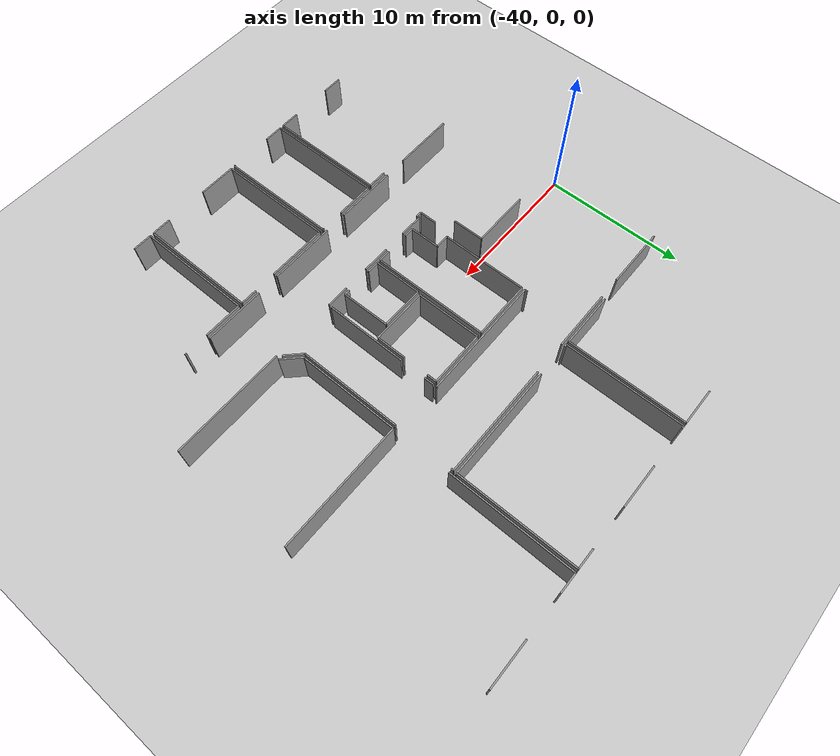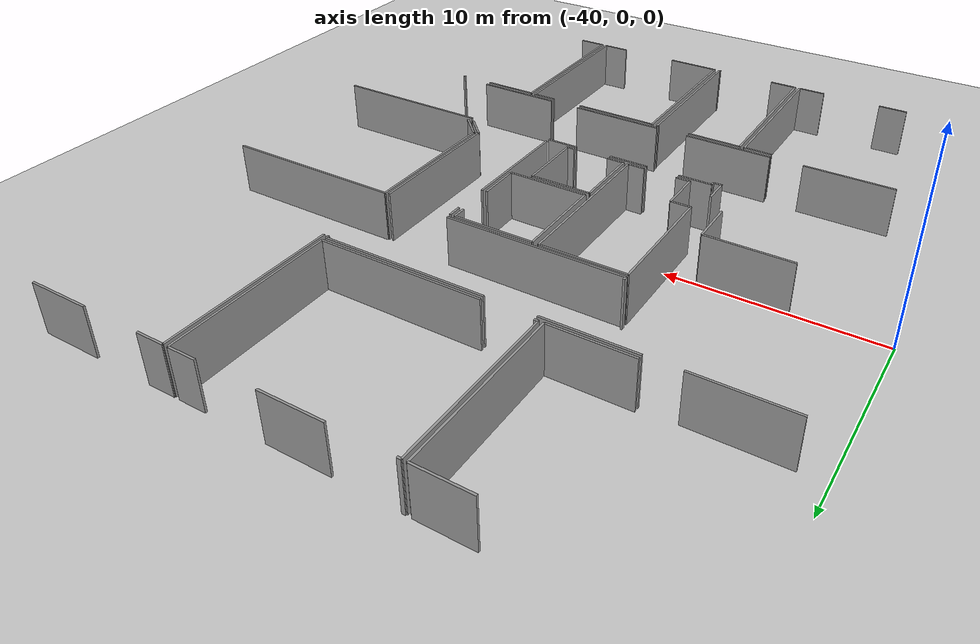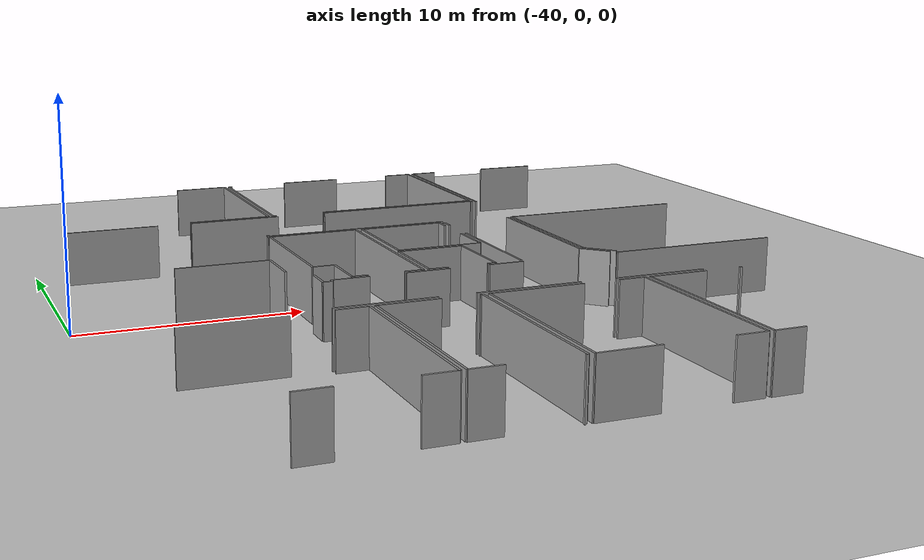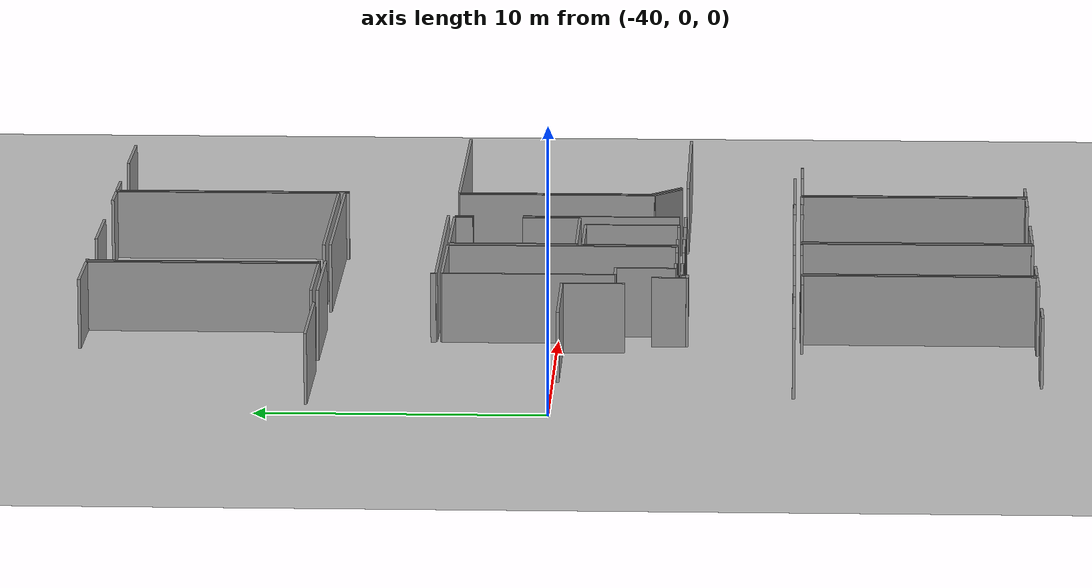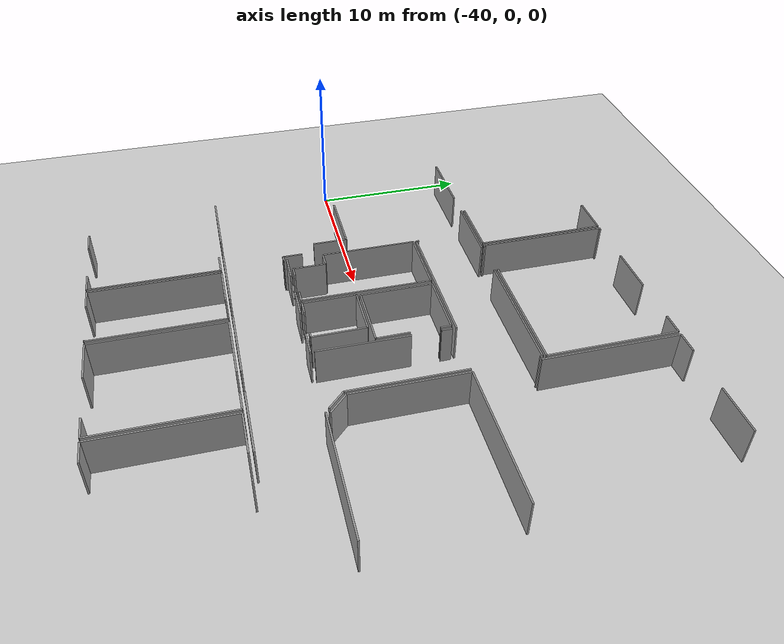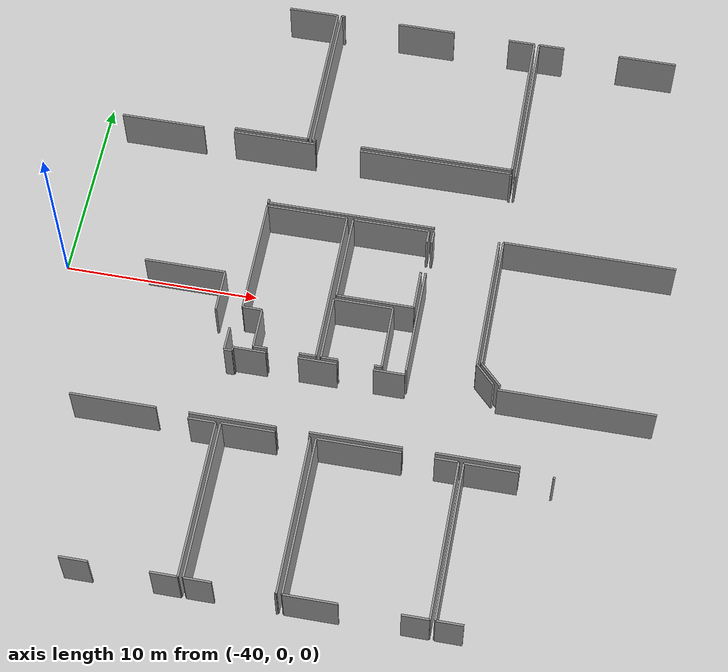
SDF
<sdf version="1.6">
 <world name="default">
  <model name="ground_plane">
   <static>1</static>
   <link name="link">
    <collision name="collision">
     <geometry><plane><normal>0 0 1</normal><size>100 100</size></plane></geometry>
     <surface><friction><ode><mu>100</mu><mu2>50</mu2></ode></friction></surface>
    </collision>
    <visual name="visual">
     <cast_shadows>0</cast_shadows>
     <geometry><plane><normal>0 0 1</normal><size>100 100</size></plane></geometry>
     <material>
      <script><uri>file://media/materials/scripts/gazebo.material</uri><name>Gazebo/Grey</name></script>
     </material>
    </visual>
   </link>
  </model>
  <model name="50041173">
   <static>1</static>
   <link name="Wall_12">
    <collision name="Wall_12_Collision">
     <geometry><box><size>3.90464342837 0.1 2.5</size></box></geometry>
     <pose>1.95232171418 0 1.25 0 0 0</pose>
    </collision>
    <visual name="Wall_12_Visual">
     <pose>1.95232171418 0 1.25 0 0 0</pose>
     <geometry><box><size>3.90464342837 0.1 2.5</size></box></geometry>
     <material>
      <script><uri>file://media/materials/scripts/gazebo.material</uri><name>Gazebo/Grey</name></script>
      <ambient>1 1 1 1</ambient>
     </material>
    </visual>
    <pose>36.7211658077 -8.24595699307 0 0 0 3.14159265359</pose>
   </link>
   <link name="Wall_16">
    <collision name="Wall_16_Collision">
     <geometry><box><size>2.60656528472 0.1 2.5</size></box></geometry>
     <pose>1.30328264236 0 1.25 0 0 0</pose>
    </collision>
    <visual name="Wall_16_Visual">
     <pose>1.30328264236 0 1.25 0 0 0</pose>
     <geometry><box><size>2.60656528472 0.1 2.5</size></box></geometry>
     <material>
      <script><uri>file://media/materials/scripts/gazebo.material</uri><name>Gazebo/Grey</name></script>
      <ambient>1 1 1 1</ambient>
     </material>
    </visual>
    <pose>34.1205666557 -0.0199294219198 0 0 0 0.0</pose>
   </link>
   <link name="Wall_17">
    <collision name="Wall_17_Collision">
     <geometry><box><size>8.22602973469 0.1 2.5</size></box></geometry>
     <pose>4.11301486735 0 1.25 0 0 0</pose>
    </collision>
    <visual name="Wall_17_Visual">
     <pose>4.11301486735 0 1.25 0 0 0</pose>
     <geometry><box><size>8.22602973469 0.1 2.5</size></box></geometry>
     <material>
      <script><uri>file://media/materials/scripts/gazebo.material</uri><name>Gazebo/Grey</name></script>
      <ambient>1 1 1 1</ambient>
     </material>
    </visual>
    <pose>36.7271319404 -0.0199294219198 0 0 0 -1.57152160173</pose>
   </link>
   <link name="Wall_18">
    <collision name="Wall_18_Collision">
     <geometry><box><size>7.98801695905 0.1 2.5</size></box></geometry>
     <pose>3.99400847952 0 1.25 0 0 0</pose>
    </collision>
    <visual name="Wall_18_Visual">
     <pose>3.99400847952 0 1.25 0 0 0</pose>
     <geometry><box><size>7.98801695905 0.1 2.5</size></box></geometry>
     <material>
      <script><uri>file://media/materials/scripts/gazebo.material</uri><name>Gazebo/Grey</name></script>
      <ambient>1 1 1 1</ambient>
     </material>
    </visual>
    <pose>47.5401761913 -8.24049861636 0 0 0 3.14159265359</pose>
   </link>
   <link name="Wall_19">
    <collision name="Wall_19_Collision">
     <geometry><box><size>0.179872553251 0.1 2.5</size></box></geometry>
     <pose>0.0899362766255 0 1.25 0 0 0</pose>
    </collision>
    <visual name="Wall_19_Visual">
     <pose>0.0899362766255 0 1.25 0 0 0</pose>
     <geometry><box><size>0.179872553251 0.1 2.5</size></box></geometry>
     <material>
      <script><uri>file://media/materials/scripts/gazebo.material</uri><name>Gazebo/Grey</name></script>
      <ambient>1 1 1 1</ambient>
     </material>
    </visual>
    <pose>37.1438726548 -8.24049861636 0 0 0 3.14159265359</pose>
   </link>
   <link name="Wall_20">
    <collision name="Wall_20_Collision">
     <geometry><box><size>8.21612632969 0.1 2.5</size></box></geometry>
     <pose>4.10806316484 0 1.25 0 0 0</pose>
    </collision>
    <visual name="Wall_20_Visual">
     <pose>4.10806316484 0 1.25 0 0 0</pose>
     <geometry><box><size>8.21612632969 0.1 2.5</size></box></geometry>
     <material>
      <script><uri>file://media/materials/scripts/gazebo.material</uri><name>Gazebo/Grey</name></script>
      <ambient>1 1 1 1</ambient>
     </material>
    </visual>
    <pose>36.9640001016 -8.24049861636 0 0 0 1.57079632679</pose>
   </link>
   <link name="Wall_21">
    <collision name="Wall_21_Collision">
     <geometry><box><size>0.181522760161 0.1 2.5</size></box></geometry>
     <pose>0.0907613800807 0 1.25 0 0 0</pose>
    </collision>
    <visual name="Wall_21_Visual">
     <pose>0.0907613800807 0 1.25 0 0 0</pose>
     <geometry><box><size>0.181522760161 0.1 2.5</size></box></geometry>
     <material>
      <script><uri>file://media/materials/scripts/gazebo.material</uri><name>Gazebo/Grey</name></script>
      <ambient>1 1 1 1</ambient>
     </material>
    </visual>
    <pose>36.9640001016 -0.024372286679 0 0 0 0.0</pose>
   </link>
   <link name="Wall_22">
    <collision name="Wall_22_Collision">
     <geometry><box><size>3.04869379776 0.1 2.5</size></box></geometry>
     <pose>1.52434689888 0 1.25 0 0 0</pose>
    </collision>
    <visual name="Wall_22_Visual">
     <pose>1.52434689888 0 1.25 0 0 0</pose>
     <geometry><box><size>3.04869379776 0.1 2.5</size></box></geometry>
     <material>
      <script><uri>file://media/materials/scripts/gazebo.material</uri><name>Gazebo/Grey</name></script>
      <ambient>1 1 1 1</ambient>
     </material>
    </visual>
    <pose>40.1090405951 -0.024372286679 0 0 0 0.0</pose>
   </link>
   <link name="Wall_23">
    <collision name="Wall_23_Collision">
     <geometry><box><size>1.37170275965 0.1 2.5</size></box></geometry>
     <pose>0.685851379827 0 1.25 0 0 0</pose>
    </collision>
    <visual name="Wall_23_Visual">
     <pose>0.685851379827 0 1.25 0 0 0</pose>
     <geometry><box><size>1.37170275965 0.1 2.5</size></box></geometry>
     <material>
      <script><uri>file://media/materials/scripts/gazebo.material</uri><name>Gazebo/Grey</name></script>
      <ambient>1 1 1 1</ambient>
     </material>
    </visual>
    <pose>46.1334382696 -0.024372286679 0 0 0 0.0</pose>
   </link>
   <link name="Wall_24">
    <collision name="Wall_24_Collision">
     <geometry><box><size>8.21620102772 0.1 2.5</size></box></geometry>
     <pose>4.10810051386 0 1.25 0 0 0</pose>
    </collision>
    <visual name="Wall_24_Visual">
     <pose>4.10810051386 0 1.25 0 0 0</pose>
     <geometry><box><size>8.21620102772 0.1 2.5</size></box></geometry>
     <material>
      <script><uri>file://media/materials/scripts/gazebo.material</uri><name>Gazebo/Grey</name></script>
      <ambient>1 1 1 1</ambient>
     </material>
    </visual>
    <pose>47.5051410292 -0.024372286679 0 0 0 -1.56653215797</pose>
   </link>
   <link name="Wall_25">
    <collision name="Wall_25_Collision">
     <geometry><box><size>0.166924775953 0.1 2.5</size></box></geometry>
     <pose>0.0834623879763 0 1.25 0 0 0</pose>
    </collision>
    <visual name="Wall_25_Visual">
     <pose>0.0834623879763 0 1.25 0 0 0</pose>
     <geometry><box><size>0.166924775953 0.1 2.5</size></box></geometry>
     <material>
      <script><uri>file://media/materials/scripts/gazebo.material</uri><name>Gazebo/Grey</name></script>
      <ambient>1 1 1 1</ambient>
     </material>
    </visual>
    <pose>47.5312904618 -8.63984868872 0 0 0 1.57079632679</pose>
   </link>
   <link name="Wall_26">
    <collision name="Wall_26_Collision">
     <geometry><box><size>7.97684632765 0.1 2.5</size></box></geometry>
     <pose>3.98842316383 0 1.25 0 0 0</pose>
    </collision>
    <visual name="Wall_26_Visual">
     <pose>3.98842316383 0 1.25 0 0 0</pose>
     <geometry><box><size>7.97684632765 0.1 2.5</size></box></geometry>
     <material>
      <script><uri>file://media/materials/scripts/gazebo.material</uri><name>Gazebo/Grey</name></script>
      <ambient>1 1 1 1</ambient>
     </material>
    </visual>
    <pose>47.5312904618 -8.47292391277 0 0 0 3.14159265359</pose>
   </link>
   <link name="Wall_27">
    <collision name="Wall_27_Collision">
     <geometry><box><size>4.34918378227 0.1 2.5</size></box></geometry>
     <pose>2.17459189114 0 1.25 0 0 0</pose>
    </collision>
    <visual name="Wall_27_Visual">
     <pose>2.17459189114 0 1.25 0 0 0</pose>
     <geometry><box><size>4.34918378227 0.1 2.5</size></box></geometry>
     <material>
      <script><uri>file://media/materials/scripts/gazebo.material</uri><name>Gazebo/Grey</name></script>
      <ambient>1 1 1 1</ambient>
     </material>
    </visual>
    <pose>37.1565665541 -8.47292391277 0 0 0 3.14159265359</pose>
   </link>
   <link name="Wall_28">
    <collision name="Wall_28_Collision">
     <geometry><box><size>4.37304831298 0.1 2.5</size></box></geometry>
     <pose>2.18652415649 0 1.25 0 0 0</pose>
    </collision>
    <visual name="Wall_28_Visual">
     <pose>2.18652415649 0 1.25 0 0 0</pose>
     <geometry><box><size>4.37304831298 0.1 2.5</size></box></geometry>
     <material>
      <script><uri>file://media/materials/scripts/gazebo.material</uri><name>Gazebo/Grey</name></script>
      <ambient>1 1 1 1</ambient>
     </material>
    </visual>
    <pose>31.1909416335 -8.47292391277 0 0 0 3.14159265359</pose>
   </link>
   <link name="Wall_36">
    <collision name="Wall_36_Collision">
     <geometry><box><size>0.191170123639 0.1 2.5</size></box></geometry>
     <pose>0.0955850618193 0 1.25 0 0 0</pose>
    </collision>
    <visual name="Wall_36_Visual">
     <pose>0.0955850618193 0 1.25 0 0 0</pose>
     <geometry><box><size>0.191170123639 0.1 2.5</size></box></geometry>
     <material>
      <script><uri>file://media/materials/scripts/gazebo.material</uri><name>Gazebo/Grey</name></script>
      <ambient>1 1 1 1</ambient>
     </material>
    </visual>
    <pose>35.4757673462 -12.2771585976 0 0 0 -1.57079632679</pose>
   </link>
   <link name="Wall_37">
    <collision name="Wall_37_Collision">
     <geometry><box><size>8.68656223819 0.1 2.5</size></box></geometry>
     <pose>4.34328111909 0 1.25 0 0 0</pose>
    </collision>
    <visual name="Wall_37_Visual">
     <pose>4.34328111909 0 1.25 0 0 0</pose>
     <geometry><box><size>8.68656223819 0.1 2.5</size></box></geometry>
     <material>
      <script><uri>file://media/materials/scripts/gazebo.material</uri><name>Gazebo/Grey</name></script>
      <ambient>1 1 1 1</ambient>
     </material>
    </visual>
    <pose>35.4757673462 -12.4683287212 0 0 0 0.0</pose>
   </link>
   <link name="Wall_40">
    <collision name="Wall_40_Collision">
     <geometry><box><size>8.60214780776 0.1 2.5</size></box></geometry>
     <pose>4.30107390388 0 1.25 0 0 0</pose>
    </collision>
    <visual name="Wall_40_Visual">
     <pose>4.30107390388 0 1.25 0 0 0</pose>
     <geometry><box><size>8.60214780776 0.1 2.5</size></box></geometry>
     <material>
      <script><uri>file://media/materials/scripts/gazebo.material</uri><name>Gazebo/Grey</name></script>
      <ambient>1 1 1 1</ambient>
     </material>
    </visual>
    <pose>47.7649851481 -8.62131559572 0 0 0 1.57079632679</pose>
   </link>
   <link name="Wall_41">
    <collision name="Wall_41_Collision">
     <geometry><box><size>1.36929091878 0.1 2.5</size></box></geometry>
     <pose>0.684645459392 0 1.25 0 0 0</pose>
    </collision>
    <visual name="Wall_41_Visual">
     <pose>0.684645459392 0 1.25 0 0 0</pose>
     <geometry><box><size>1.36929091878 0.1 2.5</size></box></geometry>
     <material>
      <script><uri>file://media/materials/scripts/gazebo.material</uri><name>Gazebo/Grey</name></script>
      <ambient>1 1 1 1</ambient>
     </material>
    </visual>
    <pose>47.7649851481 -0.0191677879611 0 0 0 0.0</pose>
   </link>
   <link name="Wall_42">
    <collision name="Wall_42_Collision">
     <geometry><box><size>3.062784026 0.1 2.5</size></box></geometry>
     <pose>1.531392013 0 1.25 0 0 0</pose>
    </collision>
    <visual name="Wall_42_Visual">
     <pose>1.531392013 0 1.25 0 0 0</pose>
     <geometry><box><size>3.062784026 0.1 2.5</size></box></geometry>
     <material>
      <script><uri>file://media/materials/scripts/gazebo.material</uri><name>Gazebo/Grey</name></script>
      <ambient>1 1 1 1</ambient>
     </material>
    </visual>
    <pose>52.0920815456 -0.0191677879611 0 0 0 0.0</pose>
   </link>
   <link name="Wall_138">
    <collision name="Wall_138_Collision">
     <geometry><box><size>4.1604254995 0.1 2.5</size></box></geometry>
     <pose>2.08021274975 0 1.25 0 0 0</pose>
    </collision>
    <visual name="Wall_138_Visual">
     <pose>2.08021274975 0 1.25 0 0 0</pose>
     <geometry><box><size>4.1604254995 0.1 2.5</size></box></geometry>
     <material>
      <script><uri>file://media/materials/scripts/gazebo.material</uri><name>Gazebo/Grey</name></script>
      <ambient>1 1 1 1</ambient>
     </material>
    </visual>
    <pose>50.4902383914 -25.056107035 0 0 0 3.14159265359</pose>
   </link>
   <link name="Wall_139">
    <collision name="Wall_139_Collision">
     <geometry><box><size>4.61854832567 0.1 2.5</size></box></geometry>
     <pose>2.30927416284 0 1.25 0 0 0</pose>
    </collision>
    <visual name="Wall_139_Visual">
     <pose>2.30927416284 0 1.25 0 0 0</pose>
     <geometry><box><size>4.61854832567 0.1 2.5</size></box></geometry>
     <material>
      <script><uri>file://media/materials/scripts/gazebo.material</uri><name>Gazebo/Grey</name></script>
      <ambient>1 1 1 1</ambient>
     </material>
    </visual>
    <pose>44.7327934195 -25.056107035 0 0 0 3.14159265359</pose>
   </link>
   <link name="Wall_140">
    <collision name="Wall_140_Collision">
     <geometry><box><size>4.36251237655 0.1 2.5</size></box></geometry>
     <pose>2.18125618828 0 1.25 0 0 0</pose>
    </collision>
    <visual name="Wall_140_Visual">
     <pose>2.18125618828 0 1.25 0 0 0</pose>
     <geometry><box><size>4.36251237655 0.1 2.5</size></box></geometry>
     <material>
      <script><uri>file://media/materials/scripts/gazebo.material</uri><name>Gazebo/Grey</name></script>
      <ambient>1 1 1 1</ambient>
     </material>
    </visual>
    <pose>38.4894259819 -25.056107035 0 0 0 3.14159265359</pose>
   </link>
   <link name="Wall_141">
    <collision name="Wall_141_Collision">
     <geometry><box><size>4.36010053568 0.1 2.5</size></box></geometry>
     <pose>2.18005026784 0 1.25 0 0 0</pose>
    </collision>
    <visual name="Wall_141_Visual">
     <pose>2.18005026784 0 1.25 0 0 0</pose>
     <geometry><box><size>4.36010053568 0.1 2.5</size></box></geometry>
     <material>
      <script><uri>file://media/materials/scripts/gazebo.material</uri><name>Gazebo/Grey</name></script>
      <ambient>1 1 1 1</ambient>
     </material>
    </visual>
    <pose>32.4934626419 -25.056107035 0 0 0 3.14159265359</pose>
   </link>
   <link name="Wall_148">
    <collision name="Wall_148_Collision">
     <geometry><box><size>0.41661377542 0.1 2.5</size></box></geometry>
     <pose>0.20830688771 0 1.25 0 0 0</pose>
    </collision>
    <visual name="Wall_148_Visual">
     <pose>0.20830688771 0 1.25 0 0 0</pose>
     <geometry><box><size>0.41661377542 0.1 2.5</size></box></geometry>
     <material>
      <script><uri>file://media/materials/scripts/gazebo.material</uri><name>Gazebo/Grey</name></script>
      <ambient>1 1 1 1</ambient>
     </material>
    </visual>
    <pose>35.054583767 -21.3009977405 0 0 0 0.0</pose>
   </link>
   <link name="Wall_149">
    <collision name="Wall_149_Collision">
     <geometry><box><size>0.195612988398 0.1 2.5</size></box></geometry>
     <pose>0.0978064941989 0 1.25 0 0 0</pose>
    </collision>
    <visual name="Wall_149_Visual">
     <pose>0.0978064941989 0 1.25 0 0 0</pose>
     <geometry><box><size>0.195612988398 0.1 2.5</size></box></geometry>
     <material>
      <script><uri>file://media/materials/scripts/gazebo.material</uri><name>Gazebo/Grey</name></script>
      <ambient>1 1 1 1</ambient>
     </material>
    </visual>
    <pose>35.4711975425 -21.3009977405 0 0 0 1.57079632679</pose>
   </link>
   <link name="Wall_150">
    <collision name="Wall_150_Collision">
     <geometry><box><size>1.6660742847 0.1 2.5</size></box></geometry>
     <pose>0.833037142349 0 1.25 0 0 0</pose>
    </collision>
    <visual name="Wall_150_Visual">
     <pose>0.833037142349 0 1.25 0 0 0</pose>
     <geometry><box><size>1.6660742847 0.1 2.5</size></box></geometry>
     <material>
      <script><uri>file://media/materials/scripts/gazebo.material</uri><name>Gazebo/Grey</name></script>
      <ambient>1 1 1 1</ambient>
     </material>
    </visual>
    <pose>35.4711975425 -21.1053847521 0 0 0 0.0</pose>
   </link>
   <link name="Wall_151">
    <collision name="Wall_151_Collision">
     <geometry><box><size>1.95892254183 0.1 2.5</size></box></geometry>
     <pose>0.979461270913 0 1.25 0 0 0</pose>
    </collision>
    <visual name="Wall_151_Visual">
     <pose>0.979461270913 0 1.25 0 0 0</pose>
     <geometry><box><size>1.95892254183 0.1 2.5</size></box></geometry>
     <material>
      <script><uri>file://media/materials/scripts/gazebo.material</uri><name>Gazebo/Grey</name></script>
      <ambient>1 1 1 1</ambient>
     </material>
    </visual>
    <pose>38.7675493158 -21.1053847521 0 0 0 0.0</pose>
   </link>
   <link name="Wall_152">
    <collision name="Wall_152_Collision">
     <geometry><box><size>1.58369087816 0.1 2.5</size></box></geometry>
     <pose>0.791845439082 0 1.25 0 0 0</pose>
    </collision>
    <visual name="Wall_152_Visual">
     <pose>0.791845439082 0 1.25 0 0 0</pose>
     <geometry><box><size>1.58369087816 0.1 2.5</size></box></geometry>
     <material>
      <script><uri>file://media/materials/scripts/gazebo.material</uri><name>Gazebo/Grey</name></script>
      <ambient>1 1 1 1</ambient>
     </material>
    </visual>
    <pose>42.5593439793 -21.1053847521 0 0 0 0.0</pose>
   </link>
   <link name="Wall_153">
    <collision name="Wall_153_Collision">
     <geometry><box><size>7.86983675645 0.1 2.5</size></box></geometry>
     <pose>3.93491837823 0 1.25 0 0 0</pose>
    </collision>
    <visual name="Wall_153_Visual">
     <pose>3.93491837823 0 1.25 0 0 0</pose>
     <geometry><box><size>7.86983675645 0.1 2.5</size></box></geometry>
     <material>
      <script><uri>file://media/materials/scripts/gazebo.material</uri><name>Gazebo/Grey</name></script>
      <ambient>1 1 1 1</ambient>
     </material>
    </visual>
    <pose>48.7530782706 -21.1053847521 0 0 0 0.0</pose>
   </link>
   <link name="Wall_224">
    <collision name="Wall_224_Collision">
     <geometry><box><size>1.35151945975 0.1 2.5</size></box></geometry>
     <pose>0.675759729874 0 1.25 0 0 0</pose>
    </collision>
    <visual name="Wall_224_Visual">
     <pose>0.675759729874 0 1.25 0 0 0</pose>
     <geometry><box><size>1.35151945975 0.1 2.5</size></box></geometry>
     <material>
      <script><uri>file://media/materials/scripts/gazebo.material</uri><name>Gazebo/Grey</name></script>
      <ambient>1 1 1 1</ambient>
     </material>
    </visual>
    <pose>49.1245017645 -33.5501028206 0 0 0 3.14159265359</pose>
   </link>
   <link name="Wall_225">
    <collision name="Wall_225_Collision">
     <geometry><box><size>8.20597121024 0.1 2.5</size></box></geometry>
     <pose>4.10298560512 0 1.25 0 0 0</pose>
    </collision>
    <visual name="Wall_225_Visual">
     <pose>4.10298560512 0 1.25 0 0 0</pose>
     <geometry><box><size>8.20597121024 0.1 2.5</size></box></geometry>
     <material>
      <script><uri>file://media/materials/scripts/gazebo.material</uri><name>Gazebo/Grey</name></script>
      <ambient>1 1 1 1</ambient>
     </material>
    </visual>
    <pose>47.7729823047 -33.5501028206 0 0 0 1.57079632679</pose>
   </link>
   <link name="Wall_226">
    <collision name="Wall_226_Collision">
     <geometry><box><size>2.70164259057 0.1 2.5</size></box></geometry>
     <pose>1.35082129529 0 1.25 0 0 0</pose>
    </collision>
    <visual name="Wall_226_Visual">
     <pose>1.35082129529 0 1.25 0 0 0</pose>
     <geometry><box><size>2.70164259057 0.1 2.5</size></box></geometry>
     <material>
      <script><uri>file://media/materials/scripts/gazebo.material</uri><name>Gazebo/Grey</name></script>
      <ambient>1 1 1 1</ambient>
     </material>
    </visual>
    <pose>47.7729823047 -25.3441316103 0 0 0 0.0</pose>
   </link>
   <link name="Wall_227">
    <collision name="Wall_227_Collision">
     <geometry><box><size>0.113610398842 0.1 2.5</size></box></geometry>
     <pose>0.0568051994212 0 1.25 0 0 0</pose>
    </collision>
    <visual name="Wall_227_Visual">
     <pose>0.0568051994212 0 1.25 0 0 0</pose>
     <geometry><box><size>0.113610398842 0.1 2.5</size></box></geometry>
     <material>
      <script><uri>file://media/materials/scripts/gazebo.material</uri><name>Gazebo/Grey</name></script>
      <ambient>1 1 1 1</ambient>
     </material>
    </visual>
    <pose>52.1106146386 -25.3441316103 0 0 0 0.0</pose>
   </link>
   <link name="Wall_229">
    <collision name="Wall_229_Collision">
     <geometry><box><size>1.35824722638 0.1 2.5</size></box></geometry>
     <pose>0.679123613191 0 1.25 0 0 0</pose>
    </collision>
    <visual name="Wall_229_Visual">
     <pose>0.679123613191 0 1.25 0 0 0</pose>
     <geometry><box><size>1.35824722638 0.1 2.5</size></box></geometry>
     <material>
      <script><uri>file://media/materials/scripts/gazebo.material</uri><name>Gazebo/Grey</name></script>
      <ambient>1 1 1 1</ambient>
     </material>
    </visual>
    <pose>47.5147883927 -33.5521338445 0 0 0 3.14159265359</pose>
   </link>
   <link name="Wall_230">
    <collision name="Wall_230_Collision">
     <geometry><box><size>2.66013353982 0.1 2.5</size></box></geometry>
     <pose>1.33006676991 0 1.25 0 0 0</pose>
    </collision>
    <visual name="Wall_230_Visual">
     <pose>1.33006676991 0 1.25 0 0 0</pose>
     <geometry><box><size>2.66013353982 0.1 2.5</size></box></geometry>
     <material>
      <script><uri>file://media/materials/scripts/gazebo.material</uri><name>Gazebo/Grey</name></script>
      <ambient>1 1 1 1</ambient>
     </material>
    </visual>
    <pose>43.1784254487 -33.5521338445 0 0 0 3.14159265359</pose>
   </link>
   <link name="Wall_231">
    <collision name="Wall_231_Collision">
     <geometry><box><size>8.23008961893 0.1 2.5</size></box></geometry>
     <pose>4.11504480946 0 1.25 0 0 0</pose>
    </collision>
    <visual name="Wall_231_Visual">
     <pose>4.11504480946 0 1.25 0 0 0</pose>
     <geometry><box><size>8.23008961893 0.1 2.5</size></box></geometry>
     <material>
      <script><uri>file://media/materials/scripts/gazebo.material</uri><name>Gazebo/Grey</name></script>
      <ambient>1 1 1 1</ambient>
     </material>
    </visual>
    <pose>40.5182919089 -33.5521338445 0 0 0 1.57079632679</pose>
   </link>
   <link name="Wall_232">
    <collision name="Wall_232_Collision">
     <geometry><box><size>4.21132803575 0.1 2.5</size></box></geometry>
     <pose>2.10566401787 0 1.25 0 0 0</pose>
    </collision>
    <visual name="Wall_232_Visual">
     <pose>2.10566401787 0 1.25 0 0 0</pose>
     <geometry><box><size>4.21132803575 0.1 2.5</size></box></geometry>
     <material>
      <script><uri>file://media/materials/scripts/gazebo.material</uri><name>Gazebo/Grey</name></script>
      <ambient>1 1 1 1</ambient>
     </material>
    </visual>
    <pose>40.5182919089 -25.3220442255 0 0 0 0.0</pose>
   </link>
   <link name="Wall_233">
    <collision name="Wall_233_Collision">
     <geometry><box><size>1.18510243977 0.1 2.5</size></box></geometry>
     <pose>0.592551219884 0 1.25 0 0 0</pose>
    </collision>
    <visual name="Wall_233_Visual">
     <pose>0.592551219884 0 1.25 0 0 0</pose>
     <geometry><box><size>1.18510243977 0.1 2.5</size></box></geometry>
     <material>
      <script><uri>file://media/materials/scripts/gazebo.material</uri><name>Gazebo/Grey</name></script>
      <ambient>1 1 1 1</ambient>
     </material>
    </visual>
    <pose>46.3378100485 -25.3220442255 0 0 0 0.0</pose>
   </link>
   <link name="Wall_234">
    <collision name="Wall_234_Collision">
     <geometry><box><size>8.23009362866 0.1 2.5</size></box></geometry>
     <pose>4.11504681433 0 1.25 0 0 0</pose>
    </collision>
    <visual name="Wall_234_Visual">
     <pose>4.11504681433 0 1.25 0 0 0</pose>
     <geometry><box><size>8.23009362866 0.1 2.5</size></box></geometry>
     <material>
      <script><uri>file://media/materials/scripts/gazebo.material</uri><name>Gazebo/Grey</name></script>
      <ambient>1 1 1 1</ambient>
     </material>
    </visual>
    <pose>47.5229124883 -25.3220442255 0 0 0 -1.57178344763</pose>
   </link>
   <link name="Wall_235">
    <collision name="Wall_235_Collision">
     <geometry><box><size>0.0883495392115 0.1 2.5</size></box></geometry>
     <pose>0.0441747696057 0 1.25 0 0 0</pose>
    </collision>
    <visual name="Wall_235_Visual">
     <pose>0.0441747696057 0 1.25 0 0 0</pose>
     <geometry><box><size>0.0883495392115 0.1 2.5</size></box></geometry>
     <material>
      <script><uri>file://media/materials/scripts/gazebo.material</uri><name>Gazebo/Grey</name></script>
      <ambient>1 1 1 1</ambient>
     </material>
    </visual>
    <pose>40.2423265379 -33.5565767092 0 0 0 3.14159265359</pose>
   </link>
   <link name="Wall_236">
    <collision name="Wall_236_Collision">
     <geometry><box><size>1.36878316281 0.1 2.5</size></box></geometry>
     <pose>0.684391581406 0 1.25 0 0 0</pose>
    </collision>
    <visual name="Wall_236_Visual">
     <pose>0.684391581406 0 1.25 0 0 0</pose>
     <geometry><box><size>1.36878316281 0.1 2.5</size></box></geometry>
     <material>
      <script><uri>file://media/materials/scripts/gazebo.material</uri><name>Gazebo/Grey</name></script>
      <ambient>1 1 1 1</ambient>
     </material>
    </visual>
    <pose>37.1516159334 -33.5565767092 0 0 0 3.14159265359</pose>
   </link>
   <link name="Wall_237">
    <collision name="Wall_237_Collision">
     <geometry><box><size>8.23453248369 0.1 2.5</size></box></geometry>
     <pose>4.11726624184 0 1.25 0 0 0</pose>
    </collision>
    <visual name="Wall_237_Visual">
     <pose>4.11726624184 0 1.25 0 0 0</pose>
     <geometry><box><size>8.23453248369 0.1 2.5</size></box></geometry>
     <material>
      <script><uri>file://media/materials/scripts/gazebo.material</uri><name>Gazebo/Grey</name></script>
      <ambient>1 1 1 1</ambient>
     </material>
    </visual>
    <pose>35.7828327706 -33.5565767092 0 0 0 1.57079632679</pose>
   </link>
   <link name="Wall_238">
    <collision name="Wall_238_Collision">
     <geometry><box><size>2.70443524842 0.1 2.5</size></box></geometry>
     <pose>1.35221762421 0 1.25 0 0 0</pose>
    </collision>
    <visual name="Wall_238_Visual">
     <pose>1.35221762421 0 1.25 0 0 0</pose>
     <geometry><box><size>2.70443524842 0.1 2.5</size></box></geometry>
     <material>
      <script><uri>file://media/materials/scripts/gazebo.material</uri><name>Gazebo/Grey</name></script>
      <ambient>1 1 1 1</ambient>
     </material>
    </visual>
    <pose>35.7828327706 -25.3220442255 0 0 0 0.0</pose>
   </link>
   <link name="Wall_239">
    <collision name="Wall_239_Collision">
     <geometry><box><size>0.0946964888674 0.1 2.5</size></box></geometry>
     <pose>0.0473482444337 0 1.25 0 0 0</pose>
    </collision>
    <visual name="Wall_239_Visual">
     <pose>0.0473482444337 0 1.25 0 0 0</pose>
     <geometry><box><size>0.0946964888674 0.1 2.5</size></box></geometry>
     <material>
      <script><uri>file://media/materials/scripts/gazebo.material</uri><name>Gazebo/Grey</name></script>
      <ambient>1 1 1 1</ambient>
     </material>
    </visual>
    <pose>40.128716139 -25.3220442255 0 0 0 0.0</pose>
   </link>
   <link name="Wall_240">
    <collision name="Wall_240_Collision">
     <geometry><box><size>8.23455420535 0.1 2.5</size></box></geometry>
     <pose>4.11727710268 0 1.25 0 0 0</pose>
    </collision>
    <visual name="Wall_240_Visual">
     <pose>4.11727710268 0 1.25 0 0 0</pose>
     <geometry><box><size>8.23455420535 0.1 2.5</size></box></geometry>
     <material>
      <script><uri>file://media/materials/scripts/gazebo.material</uri><name>Gazebo/Grey</name></script>
      <ambient>1 1 1 1</ambient>
     </material>
    </visual>
    <pose>40.2234126279 -25.3220442255 0 0 0 -1.56849942934</pose>
   </link>
   <link name="Wall_241">
    <collision name="Wall_241_Collision">
     <geometry><box><size>1.35824722638 0.1 2.5</size></box></geometry>
     <pose>0.679123613191 0 1.25 0 0 0</pose>
    </collision>
    <visual name="Wall_241_Visual">
     <pose>0.679123613191 0 1.25 0 0 0</pose>
     <geometry><box><size>1.35824722638 0.1 2.5</size></box></geometry>
     <material>
      <script><uri>file://media/materials/scripts/gazebo.material</uri><name>Gazebo/Grey</name></script>
      <ambient>1 1 1 1</ambient>
     </material>
    </visual>
    <pose>35.5317474422 -33.5648277438 0 0 0 3.14159265359</pose>
   </link>
   <link name="Wall_242">
    <collision name="Wall_242_Collision">
     <geometry><box><size>1.42171672294 0.1 2.5</size></box></geometry>
     <pose>0.710858361471 0 1.25 0 0 0</pose>
    </collision>
    <visual name="Wall_242_Visual">
     <pose>0.710858361471 0 1.25 0 0 0</pose>
     <geometry><box><size>1.42171672294 0.1 2.5</size></box></geometry>
     <material>
      <script><uri>file://media/materials/scripts/gazebo.material</uri><name>Gazebo/Grey</name></script>
      <ambient>1 1 1 1</ambient>
     </material>
    </visual>
    <pose>31.1904338775 -33.5648277438 0 0 0 3.14159265359</pose>
   </link>
   <link name="Wall_245">
    <collision name="Wall_245_Collision">
     <geometry><box><size>1.39074360862 0.1 2.5</size></box></geometry>
     <pose>0.695371804311 0 1.25 0 0 0</pose>
    </collision>
    <visual name="Wall_245_Visual">
     <pose>0.695371804311 0 1.25 0 0 0</pose>
     <geometry><box><size>1.39074360862 0.1 2.5</size></box></geometry>
     <material>
      <script><uri>file://media/materials/scripts/gazebo.material</uri><name>Gazebo/Grey</name></script>
      <ambient>1 1 1 1</ambient>
     </material>
    </visual>
    <pose>34.1492548681 -25.3391809896 0 0 0 0.0</pose>
   </link>
   <link name="Wall_246">
    <collision name="Wall_246_Collision">
     <geometry><box><size>8.22565089242 0.1 2.5</size></box></geometry>
     <pose>4.11282544621 0 1.25 0 0 0</pose>
    </collision>
    <visual name="Wall_246_Visual">
     <pose>4.11282544621 0 1.25 0 0 0</pose>
     <geometry><box><size>8.22565089242 0.1 2.5</size></box></geometry>
     <material>
      <script><uri>file://media/materials/scripts/gazebo.material</uri><name>Gazebo/Grey</name></script>
      <ambient>1 1 1 1</ambient>
     </material>
    </visual>
    <pose>35.5399984767 -25.3391809896 0 0 0 -1.57179941288</pose>
   </link>
   <link name="Wall_288">
    <collision name="Wall_288_Collision">
     <geometry><box><size>2.20632663942 0.1 2.5</size></box></geometry>
     <pose>1.10316331971 0 1.25 0 0 0</pose>
    </collision>
    <visual name="Wall_288_Visual">
     <pose>1.10316331971 0 1.25 0 0 0</pose>
     <geometry><box><size>2.20632663942 0.1 2.5</size></box></geometry>
     <material>
      <script><uri>file://media/materials/scripts/gazebo.material</uri><name>Gazebo/Grey</name></script>
      <ambient>1 1 1 1</ambient>
     </material>
    </visual>
    <pose>34.1726116428 -19.1429079185 0 0 0 1.57079632679</pose>
   </link>
   <link name="Wall_289">
    <collision name="Wall_289_Collision">
     <geometry><box><size>4.15039731905 0.1 2.5</size></box></geometry>
     <pose>2.07519865952 0 1.25 0 0 0</pose>
    </collision>
    <visual name="Wall_289_Visual">
     <pose>2.07519865952 0 1.25 0 0 0</pose>
     <geometry><box><size>4.15039731905 0.1 2.5</size></box></geometry>
     <material>
      <script><uri>file://media/materials/scripts/gazebo.material</uri><name>Gazebo/Grey</name></script>
      <ambient>1 1 1 1</ambient>
     </material>
    </visual>
    <pose>34.1726116428 -16.936581279 0 0 0 3.14159265359</pose>
   </link>
   <link name="Wall_293">
    <collision name="Wall_293_Collision">
     <geometry><box><size>1.2133264635 0.1 2.5</size></box></geometry>
     <pose>0.606663231751 0 1.25 0 0 0</pose>
    </collision>
    <visual name="Wall_293_Visual">
     <pose>0.606663231751 0 1.25 0 0 0</pose>
     <geometry><box><size>1.2133264635 0.1 2.5</size></box></geometry>
     <material>
      <script><uri>file://media/materials/scripts/gazebo.material</uri><name>Gazebo/Grey</name></script>
      <ambient>1 1 1 1</ambient>
     </material>
    </visual>
    <pose>35.0868262713 -20.0493792683 0 0 0 -1.5792707002</pose>
   </link>
   <link name="Wall_294">
    <collision name="Wall_294_Collision">
     <geometry><box><size>0.850491253903 0.1 2.5</size></box></geometry>
     <pose>0.425245626952 0 1.25 0 0 0</pose>
    </collision>
    <visual name="Wall_294_Visual">
     <pose>0.425245626952 0 1.25 0 0 0</pose>
     <geometry><box><size>0.850491253903 0.1 2.5</size></box></geometry>
     <material>
      <script><uri>file://media/materials/scripts/gazebo.material</uri><name>Gazebo/Grey</name></script>
      <ambient>1 1 1 1</ambient>
     </material>
    </visual>
    <pose>39.63187692 -20.866993323 0 0 0 3.14159265359</pose>
   </link>
   <link name="Wall_295">
    <collision name="Wall_295_Collision">
     <geometry><box><size>0.701084059001 0.1 2.5</size></box></geometry>
     <pose>0.350542029501 0 1.25 0 0 0</pose>
    </collision>
    <visual name="Wall_295_Visual">
     <pose>0.350542029501 0 1.25 0 0 0</pose>
     <geometry><box><size>0.701084059001 0.1 2.5</size></box></geometry>
     <material>
      <script><uri>file://media/materials/scripts/gazebo.material</uri><name>Gazebo/Grey</name></script>
      <ambient>1 1 1 1</ambient>
     </material>
    </visual>
    <pose>37.1566934931 -20.866993323 0 0 0 3.14159265359</pose>
   </link>
   <link name="Wall_296">
    <collision name="Wall_296_Collision">
     <geometry><box><size>2.1069334078 0.1 2.5</size></box></geometry>
     <pose>1.0534667039 0 1.25 0 0 0</pose>
    </collision>
    <visual name="Wall_296_Visual">
     <pose>1.0534667039 0 1.25 0 0 0</pose>
     <geometry><box><size>2.1069334078 0.1 2.5</size></box></geometry>
     <material>
      <script><uri>file://media/materials/scripts/gazebo.material</uri><name>Gazebo/Grey</name></script>
      <ambient>1 1 1 1</ambient>
     </material>
    </visual>
    <pose>36.4556094341 -20.866993323 0 0 0 1.57079632679</pose>
   </link>
   <link name="Wall_297">
    <collision name="Wall_297_Collision">
     <geometry><box><size>0.978445758968 0.1 2.5</size></box></geometry>
     <pose>0.489222879484 0 1.25 0 0 0</pose>
    </collision>
    <visual name="Wall_297_Visual">
     <pose>0.489222879484 0 1.25 0 0 0</pose>
     <geometry><box><size>0.978445758968 0.1 2.5</size></box></geometry>
     <material>
      <script><uri>file://media/materials/scripts/gazebo.material</uri><name>Gazebo/Grey</name></script>
      <ambient>1 1 1 1</ambient>
     </material>
    </visual>
    <pose>36.4556094341 -18.7600599152 0 0 0 3.14159265359</pose>
   </link>
   <link name="Wall_298">
    <collision name="Wall_298_Collision">
     <geometry><box><size>6.08609002513 0.1 2.5</size></box></geometry>
     <pose>3.04304501257 0 1.25 0 0 0</pose>
    </collision>
    <visual name="Wall_298_Visual">
     <pose>3.04304501257 0 1.25 0 0 0</pose>
     <geometry><box><size>6.08609002513 0.1 2.5</size></box></geometry>
     <material>
      <script><uri>file://media/materials/scripts/gazebo.material</uri><name>Gazebo/Grey</name></script>
      <ambient>1 1 1 1</ambient>
     </material>
    </visual>
    <pose>35.4771636751 -18.7600599152 0 0 0 1.57079632679</pose>
   </link>
   <link name="Wall_299">
    <collision name="Wall_299_Collision">
     <geometry><box><size>4.17083449694 0.1 2.5</size></box></geometry>
     <pose>2.08541724847 0 1.25 0 0 0</pose>
    </collision>
    <visual name="Wall_299_Visual">
     <pose>2.08541724847 0 1.25 0 0 0</pose>
     <geometry><box><size>4.17083449694 0.1 2.5</size></box></geometry>
     <material>
      <script><uri>file://media/materials/scripts/gazebo.material</uri><name>Gazebo/Grey</name></script>
      <ambient>1 1 1 1</ambient>
     </material>
    </visual>
    <pose>35.4771636751 -12.6739698901 0 0 0 0.0</pose>
   </link>
   <link name="Wall_300">
    <collision name="Wall_300_Collision">
     <geometry><box><size>8.19303929366 0.1 2.5</size></box></geometry>
     <pose>4.09651964683 0 1.25 0 0 0</pose>
    </collision>
    <visual name="Wall_300_Visual">
     <pose>4.09651964683 0 1.25 0 0 0</pose>
     <geometry><box><size>8.19303929366 0.1 2.5</size></box></geometry>
     <material>
      <script><uri>file://media/materials/scripts/gazebo.material</uri><name>Gazebo/Grey</name></script>
      <ambient>1 1 1 1</ambient>
     </material>
    </visual>
    <pose>39.6479981721 -12.6739698901 0 0 0 -1.57276400472</pose>
   </link>
   <link name="Wall_301">
    <collision name="Wall_301_Collision">
     <geometry><box><size>0.372439005814 0.1 2.5</size></box></geometry>
     <pose>0.186219502907 0 1.25 0 0 0</pose>
    </collision>
    <visual name="Wall_301_Visual">
     <pose>0.186219502907 0 1.25 0 0 0</pose>
     <geometry><box><size>0.372439005814 0.1 2.5</size></box></geometry>
     <material>
      <script><uri>file://media/materials/scripts/gazebo.material</uri><name>Gazebo/Grey</name></script>
      <ambient>1 1 1 1</ambient>
     </material>
    </visual>
    <pose>42.9400340197 -20.8702937368 0 0 0 3.14159265359</pose>
   </link>
   <link name="Wall_302">
    <collision name="Wall_302_Collision">
     <geometry><box><size>0.868008834954 0.1 2.5</size></box></geometry>
     <pose>0.434004417477 0 1.25 0 0 0</pose>
    </collision>
    <visual name="Wall_302_Visual">
     <pose>0.434004417477 0 1.25 0 0 0</pose>
     <geometry><box><size>0.868008834954 0.1 2.5</size></box></geometry>
     <material>
      <script><uri>file://media/materials/scripts/gazebo.material</uri><name>Gazebo/Grey</name></script>
      <ambient>1 1 1 1</ambient>
     </material>
    </visual>
    <pose>40.7456396456 -20.8702937368 0 0 0 3.14159265359</pose>
   </link>
   <link name="Wall_303">
    <collision name="Wall_303_Collision">
     <geometry><box><size>3.37492701008 0.1 2.5</size></box></geometry>
     <pose>1.68746350504 0 1.25 0 0 0</pose>
    </collision>
    <visual name="Wall_303_Visual">
     <pose>1.68746350504 0 1.25 0 0 0</pose>
     <geometry><box><size>3.37492701008 0.1 2.5</size></box></geometry>
     <material>
      <script><uri>file://media/materials/scripts/gazebo.material</uri><name>Gazebo/Grey</name></script>
      <ambient>1 1 1 1</ambient>
     </material>
    </visual>
    <pose>39.8776308106 -20.8702937368 0 0 0 1.57079632679</pose>
   </link>
   <link name="Wall_304">
    <collision name="Wall_304_Collision">
     <geometry><box><size>3.02800274188 0.1 2.5</size></box></geometry>
     <pose>1.51400137094 0 1.25 0 0 0</pose>
    </collision>
    <visual name="Wall_304_Visual">
     <pose>1.51400137094 0 1.25 0 0 0</pose>
     <geometry><box><size>3.02800274188 0.1 2.5</size></box></geometry>
     <material>
      <script><uri>file://media/materials/scripts/gazebo.material</uri><name>Gazebo/Grey</name></script>
      <ambient>1 1 1 1</ambient>
     </material>
    </visual>
    <pose>39.8776308106 -17.4953667268 0 0 0 0.0</pose>
   </link>
   <link name="Wall_305">
    <collision name="Wall_305_Collision">
     <geometry><box><size>3.37510232667 0.1 2.5</size></box></geometry>
     <pose>1.68755116334 0 1.25 0 0 0</pose>
    </collision>
    <visual name="Wall_305_Visual">
     <pose>1.68755116334 0 1.25 0 0 0</pose>
     <geometry><box><size>3.37510232667 0.1 2.5</size></box></geometry>
     <material>
      <script><uri>file://media/materials/scripts/gazebo.material</uri><name>Gazebo/Grey</name></script>
      <ambient>1 1 1 1</ambient>
     </material>
    </visual>
    <pose>42.9056335525 -17.4953667268 0 0 0 -1.56060372833</pose>
   </link>
   <link name="Wall_306">
    <collision name="Wall_306_Collision">
     <geometry><box><size>3.96455863312 0.1 2.5</size></box></geometry>
     <pose>1.98227931656 0 1.25 0 0 0</pose>
    </collision>
    <visual name="Wall_306_Visual">
     <pose>1.98227931656 0 1.25 0 0 0</pose>
     <geometry><box><size>3.96455863312 0.1 2.5</size></box></geometry>
     <material>
      <script><uri>file://media/materials/scripts/gazebo.material</uri><name>Gazebo/Grey</name></script>
      <ambient>1 1 1 1</ambient>
     </material>
    </visual>
    <pose>43.9339663358 -17.2616720404 0 0 0 3.14159265359</pose>
   </link>
   <link name="Wall_307">
    <collision name="Wall_307_Collision">
     <geometry><box><size>4.56358374165 0.1 2.5</size></box></geometry>
     <pose>2.28179187083 0 1.25 0 0 0</pose>
    </collision>
    <visual name="Wall_307_Visual">
     <pose>2.28179187083 0 1.25 0 0 0</pose>
     <geometry><box><size>4.56358374165 0.1 2.5</size></box></geometry>
     <material>
      <script><uri>file://media/materials/scripts/gazebo.material</uri><name>Gazebo/Grey</name></script>
      <ambient>1 1 1 1</ambient>
     </material>
    </visual>
    <pose>39.9694077027 -17.2616720404 0 0 0 1.57079632679</pose>
   </link>
   <link name="Wall_308">
    <collision name="Wall_308_Collision">
     <geometry><box><size>3.95046840488 0.1 2.5</size></box></geometry>
     <pose>1.97523420244 0 1.25 0 0 0</pose>
    </collision>
    <visual name="Wall_308_Visual">
     <pose>1.97523420244 0 1.25 0 0 0</pose>
     <geometry><box><size>3.95046840488 0.1 2.5</size></box></geometry>
     <material>
      <script><uri>file://media/materials/scripts/gazebo.material</uri><name>Gazebo/Grey</name></script>
      <ambient>1 1 1 1</ambient>
     </material>
    </visual>
    <pose>39.9694077027 -12.6980882988 0 0 0 0.0</pose>
   </link>
   <link name="Wall_309">
    <collision name="Wall_309_Collision">
     <geometry><box><size>0.667699103811 0.1 2.5</size></box></geometry>
     <pose>0.333849551905 0 1.25 0 0 0</pose>
    </collision>
    <visual name="Wall_309_Visual">
     <pose>0.333849551905 0 1.25 0 0 0</pose>
     <geometry><box><size>0.667699103811 0.1 2.5</size></box></geometry>
     <material>
      <script><uri>file://media/materials/scripts/gazebo.material</uri><name>Gazebo/Grey</name></script>
      <ambient>1 1 1 1</ambient>
     </material>
    </visual>
    <pose>43.9198761075 -12.6980882988 0 0 0 -1.57079632679</pose>
   </link>
   <link name="Wall_310">
    <collision name="Wall_310_Collision">
     <geometry><box><size>2.07702359901 0.1 2.5</size></box></geometry>
     <pose>1.03851179951 0 1.25 0 0 0</pose>
    </collision>
    <visual name="Wall_310_Visual">
     <pose>1.03851179951 0 1.25 0 0 0</pose>
     <geometry><box><size>2.07702359901 0.1 2.5</size></box></geometry>
     <material>
      <script><uri>file://media/materials/scripts/gazebo.material</uri><name>Gazebo/Grey</name></script>
      <ambient>1 1 1 1</ambient>
     </material>
    </visual>
    <pose>43.9198761075 -15.184696235 0 0 0 -1.56401241913</pose>
   </link>
   <link name="Wall_311">
    <collision name="Wall_311_Collision">
     <geometry><box><size>1.39127772503 0.1 2.5</size></box></geometry>
     <pose>0.695638862517 0 1.25 0 0 0</pose>
    </collision>
    <visual name="Wall_311_Visual">
     <pose>0.695638862517 0 1.25 0 0 0</pose>
     <geometry><box><size>1.39127772503 0.1 2.5</size></box></geometry>
     <material>
      <script><uri>file://media/materials/scripts/gazebo.material</uri><name>Gazebo/Grey</name></script>
      <ambient>1 1 1 1</ambient>
     </material>
    </visual>
    <pose>48.5303003377 -20.8781639544 0 0 0 2.3530977259</pose>
   </link>
   <link name="Wall_312">
    <collision name="Wall_312_Collision">
     <geometry><box><size>7.18296986468 0.1 2.5</size></box></geometry>
     <pose>3.59148493234 0 1.25 0 0 0</pose>
    </collision>
    <visual name="Wall_312_Visual">
     <pose>3.59148493234 0 1.25 0 0 0</pose>
     <geometry><box><size>7.18296986468 0.1 2.5</size></box></geometry>
     <material>
      <script><uri>file://media/materials/scripts/gazebo.material</uri><name>Gazebo/Grey</name></script>
      <ambient>1 1 1 1</ambient>
     </material>
    </visual>
    <pose>47.5495696768 -19.8913402219 0 0 0 1.57079632679</pose>
   </link>
   <link name="Wall_313">
    <collision name="Wall_313_Collision">
     <geometry><box><size>0.671888090584 0.1 2.5</size></box></geometry>
     <pose>0.335944045292 0 1.25 0 0 0</pose>
    </collision>
    <visual name="Wall_313_Visual">
     <pose>0.335944045292 0 1.25 0 0 0</pose>
     <geometry><box><size>0.671888090584 0.1 2.5</size></box></geometry>
     <material>
      <script><uri>file://media/materials/scripts/gazebo.material</uri><name>Gazebo/Grey</name></script>
      <ambient>1 1 1 1</ambient>
     </material>
    </visual>
    <pose>44.1666455102 -12.7083703572 0 0 0 -1.57079632679</pose>
   </link>
   <link name="Wall_314">
    <collision name="Wall_314_Collision">
     <geometry><box><size>5.69893754734 0.1 2.5</size></box></geometry>
     <pose>2.84946877367 0 1.25 0 0 0</pose>
    </collision>
    <visual name="Wall_314_Visual">
     <pose>2.84946877367 0 1.25 0 0 0</pose>
     <geometry><box><size>5.69893754734 0.1 2.5</size></box></geometry>
     <material>
      <script><uri>file://media/materials/scripts/gazebo.material</uri><name>Gazebo/Grey</name></script>
      <ambient>1 1 1 1</ambient>
     </material>
    </visual>
    <pose>44.1666455102 -15.1792378583 0 0 0 -1.57280100169</pose>
   </link>
   <link name="Wall_317">
    <collision name="Wall_317_Collision">
     <geometry><box><size>1.52725689864 0.1 2.5</size></box></geometry>
     <pose>0.763628449322 0 1.25 0 0 0</pose>
    </collision>
    <visual name="Wall_317_Visual">
     <pose>0.763628449322 0 1.25 0 0 0</pose>
     <geometry><box><size>1.52725689864 0.1 2.5</size></box></geometry>
     <material>
      <script><uri>file://media/materials/scripts/gazebo.material</uri><name>Gazebo/Grey</name></script>
      <ambient>1 1 1 1</ambient>
     </material>
    </visual>
    <pose>48.8444743456 -20.866993323 0 0 0 2.35554800189</pose>
   </link>
   <link name="Wall_318">
    <collision name="Wall_318_Collision">
     <geometry><box><size>7.0904313387 0.1 2.5</size></box></geometry>
     <pose>3.54521566935 0 1.25 0 0 0</pose>
    </collision>
    <visual name="Wall_318_Visual">
     <pose>3.54521566935 0 1.25 0 0 0</pose>
     <geometry><box><size>7.0904313387 0.1 2.5</size></box></geometry>
     <material>
      <script><uri>file://media/materials/scripts/gazebo.material</uri><name>Gazebo/Grey</name></script>
      <ambient>1 1 1 1</ambient>
     </material>
    </visual>
    <pose>47.7652390261 -19.7863616746 0 0 0 1.57079632679</pose>
   </link>
   <link name="Wall_319">
    <collision name="Wall_319_Collision">
     <geometry><box><size>8.84815557643 0.1 2.5</size></box></geometry>
     <pose>4.42407778821 0 1.25 0 0 0</pose>
    </collision>
    <visual name="Wall_319_Visual">
     <pose>4.42407778821 0 1.25 0 0 0</pose>
     <geometry><box><size>8.84815557643 0.1 2.5</size></box></geometry>
     <material>
      <script><uri>file://media/materials/scripts/gazebo.material</uri><name>Gazebo/Grey</name></script>
      <ambient>1 1 1 1</ambient>
     </material>
    </visual>
    <pose>47.7652390261 -12.6959303359 0 0 0 0.0</pose>
   </link>
   <pose>-65.65 16.778664094 0 0 0 0</pose>
  </model>
 </world>
</sdf>
